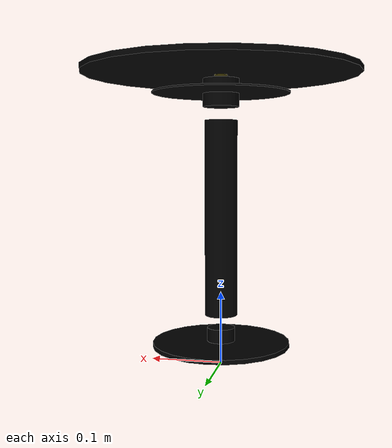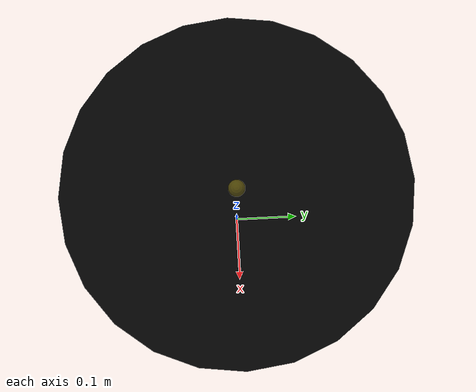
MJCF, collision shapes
<mujoco model="table_round">
  <custom>
    <numeric data="-0.332024 -0.069709 0.02821 0.999971 -0.0 -0.0 0.007559" name="0_part0_initpos" />
    <numeric data="-0.112954 -0.076936 0.026272 0.0 1.0 -9.4e-05 0.0" name="3_part3_initpos" />
    <numeric data="-0.316383 0.24 0.003274 0.0 0.082519 0.99659 0.0" name="2_part2_initpos" />
    <numeric data="0.01172 0.107275 0.022457 0.583591 -0.47236 0.52619 -0.399276" name="1_part1_initpos" />
  </custom>
  <asset>
    <mesh file="table_round/0.stl" name="part0" scale="0.0005 0.0005 0.0005" />
    <mesh file="table_round/3.stl" name="part3" scale="0.0005 0.0005 0.0005" />
    <mesh file="table_round/2.stl" name="part2" scale="0.0005 0.0005 0.0005" />
    <mesh file="table_round/1.stl" name="part1" scale="0.0005 0.0005 0.0005" />
  </asset>
  <worldbody><body name="combined_body" pos="0 0 0.02875" quat="1 0 0 0"><geom conaffinity="0" contype="0" density="0" mesh="part0" name="0_part0_mesh" pos="-6.5e-10 2.5e-10 -2e-10" rgba="0.82 0.71 0.55 1" type="mesh" quat="1 0 0 0" />
      <geom density="50" name="noviz_collision_0_part0_0" pos="-6.5e-10 2.5e-10 -2e-10" quat="1 0 0 0" rgba="0 0 0 0" size="0.09525 0.003" solref="0.001 1" type="cylinder" />
      <geom density="50" name="noviz_collision_0_part0_1" pos="-6.5e-10 2.5e-10 -2e-10" quat="1 0 0 0" rgba="0 0 0 0" size="0.01925 0.022" solref="0.001 1" type="cylinder" />
      <geom density="50" name="noviz_collision_0_part0_2" pos="-6.5e-10 2.5e-10 -2e-10" quat="1 0 0 0" rgba="0 0 0 0" size="0.013 0.0075" solref="0.001 1" type="cylinder" />
    <site name="0_part0_horizontal_radius_site" pos="-6.5e-10 2.5e-10 -2e-10" quat="1 0 0 0" rgba="0 0 0 0" size="0.01" />
      <site name="0_part0_top_site" pos="-6.5e-10 2.5e-10 -2e-10" quat="1 0 0 0" rgba="0 0 0 0" size="0.01" />
      <site name="0_part0_bottom_site" pos="-6.5e-10 2.5e-10 -2e-10" quat="1 0 0 0" rgba="0 0 0 0" size="0.01" />
      <site name="0_part0_corner_site8" pos="-6.5e-10 2.5e-10 -2e-10" quat="1 0 0 0" rgba="0 0 0 0" size="0.01" />
      <site name="0_part0_corner_site7" pos="-6.5e-10 2.5e-10 -2e-10" quat="1 0 0 0" rgba="0 0 0 0" size="0.01" />
      <site name="0_part0_corner_site6" pos="-6.5e-10 2.5e-10 -2e-10" quat="1 0 0 0" rgba="0 0 0 0" size="0.01" />
      <site name="0_part0_corner_site5" pos="-6.5e-10 2.5e-10 -2e-10" quat="1 0 0 0" rgba="0 0 0 0" size="0.01" />
      <site name="0_part0_corner_site4" pos="-6.5e-10 2.5e-10 -2e-10" quat="1 0 0 0" rgba="0 0 0 0" size="0.01" />
      <site name="0_part0_corner_site3" pos="-6.5e-10 2.5e-10 -2e-10" quat="1 0 0 0" rgba="0 0 0 0" size="0.01" />
      <site name="0_part0_corner_site2" pos="-6.5e-10 2.5e-10 -2e-10" quat="1 0 0 0" rgba="0 0 0 0" size="0.01" />
      <site name="0_part0_corner_site1" pos="-6.5e-10 2.5e-10 -2e-10" quat="1 0 0 0" rgba="0 0 0 0" size="0.01" />
      <site name="base-column,conn_site1" pos="-6.5e-10 2.5e-10 -2e-10" quat="1 0 0 0" rgba="0.9019 0.0980 0.2941 0.3" size="0.01" />
      <geom conaffinity="0" contype="0" density="0" mesh="part3" name="3_part3_mesh" pos="0 0 0.3468" rgba="0.82 0.71 0.55 1" type="mesh" quat="1 0 0 0" />
      <geom density="50" name="noviz_collision_3_part3_0" pos="0 0 0.3468" quat="1 0 0 0" rgba="0 0 0 0" size="0.095 0.001" solref="0.001 1" type="cylinder" />
      <geom density="50" name="noviz_collision_3_part3_1" pos="0 0 0.3468" quat="1 0 0 0" rgba="0 0 0 0" size="0.025 0.019" solref="0.001 1" type="cylinder" />
      <geom density="50" name="noviz_collision_3_part3_2" pos="0 0 0.3468" quat="1 0 0 0" rgba="0 0 0 0" size="0.013 0.0075" solref="0.001 1" type="cylinder" />
    <site group="1" name="3_part3_ltgt_site0" pos="0 0 0.3468" rgba="0 0 0 0" size="0.01 0.01 0.01" type="sphere" quat="1 0 0 0" />
      <site group="1" name="3_part3_rtgt_site0" pos="0 0 0.3468" rgba="0 0 0 0" size="0.01 0.01 0.01" type="sphere" quat="1 0 0 0" />
      <site name="3_part3_horizontal_radius_site" pos="0 0 0.3468" quat="1 0 0 0" rgba="0 0 0 0" size="0.01" />
      <site name="3_part3_top_site" pos="0 0 0.3468" quat="1 0 0 0" rgba="0 0 0 0" size="0.01" />
      <site name="3_part3_bottom_site" pos="0 0 0.3468" quat="1 0 0 0" rgba="0 0 0 0" size="0.01" />
      <site name="3_part3_corner_site8" pos="0 0 0.3468" quat="1 0 0 0" rgba="0 0 0 0" size="0.01" />
      <site name="3_part3_corner_site7" pos="0 0 0.3468" quat="1 0 0 0" rgba="0 0 0 0" size="0.01" />
      <site name="3_part3_corner_site6" pos="0 0 0.3468" quat="1 0 0 0" rgba="0 0 0 0" size="0.01" />
      <site name="3_part3_corner_site5" pos="0 0 0.3468" quat="1 0 0 0" rgba="0 0 0 0" size="0.01" />
      <site name="3_part3_corner_site4" pos="0 0 0.3468" quat="1 0 0 0" rgba="0 0 0 0" size="0.01" />
      <site name="3_part3_corner_site3" pos="0 0 0.3468" quat="1 0 0 0" rgba="0 0 0 0" size="0.01" />
      <site name="3_part3_corner_site2" pos="0 0 0.3468" quat="1 0 0 0" rgba="0 0 0 0" size="0.01" />
      <site name="3_part3_corner_site1" pos="0 0 0.3468" quat="1 0 0 0" rgba="0 0 0 0" size="0.01" />
      <site name="topsupp-column,conn_site2" pos="0 0 0.3468" quat="1 0 0 0" rgba="0.2352 0.7058 0.2941 0.3" size="0.01" />
      <site name="topsupp-topplane,conn_site1" pos="0 0 0.3468" quat="1 0 0 0" rgba="1.0 0.8823 0.0980 0.3" size="0.01" />
      <geom conaffinity="0" contype="0" density="0" mesh="part2" name="2_part2_mesh" pos="0 0 0.3746500065" rgba="0.82 0.71 0.55 1" type="mesh" quat="1 0 0 0" />
      <geom density="50" name="noviz_collision_2_part2_0" pos="0 0 0.3746500065" quat="1 0 0 0" rgba="0 0 0 0" size="0.1905 0.0035" solref="0.001 1" type="cylinder" />
    <site name="2_part2_horizontal_radius_site" pos="0 0 0.3746500065" quat="1 0 0 0" rgba="0 0 0 0" size="0.01" />
      <site name="2_part2_top_site" pos="0 0 0.3746500065" quat="1 0 0 0" rgba="0 0 0 0" size="0.01" />
      <site name="2_part2_bottom_site" pos="0 0 0.3746500065" quat="1 0 0 0" rgba="0 0 0 0" size="0.01" />
      <site name="2_part2_corner_site8" pos="0 0 0.3746500065" quat="1 0 0 0" rgba="0 0 0 0" size="0.01" />
      <site name="2_part2_corner_site7" pos="0 0 0.3746500065" quat="1 0 0 0" rgba="0 0 0 0" size="0.01" />
      <site name="2_part2_corner_site6" pos="0 0 0.3746500065" quat="1 0 0 0" rgba="0 0 0 0" size="0.01" />
      <site name="2_part2_corner_site5" pos="0 0 0.3746500065" quat="1 0 0 0" rgba="0 0 0 0" size="0.01" />
      <site name="2_part2_corner_site4" pos="0 0 0.3746500065" quat="1 0 0 0" rgba="0 0 0 0" size="0.01" />
      <site name="2_part2_corner_site3" pos="0 0 0.3746500065" quat="1 0 0 0" rgba="0 0 0 0" size="0.01" />
      <site name="2_part2_corner_site2" pos="0 0 0.3746500065" quat="1 0 0 0" rgba="0 0 0 0" size="0.01" />
      <site name="2_part2_corner_site1" pos="0 0 0.3746500065" quat="1 0 0 0" rgba="0 0 0 0" size="0.01" />
      <site name="topplane-topsupp,conn_site1" pos="0 0 0.3746500065" quat="1 0 0 0" rgba="1.0 0.8823 0.0980 0.3" size="0.01" />
      <geom conaffinity="0" contype="0" density="0" mesh="part1" name="1_part1_mesh" pos="0 0 0.17462500035" rgba="0.82 0.71 0.55 1" type="mesh" quat="1 0 0 0" />
      <geom density="50" name="noviz_collision_1_part1_0" pos="0 0 0.17462500035" quat="1 0 0 0" rgba="0 0 0 0" size="0.0225 0.135" solref="0.001 1" type="cylinder" />

      <geom density="50" name="noviz_collision_1_part1_1" pos="0 0 0.17462500035" quat="1 0 0 0" rgba="1 0 0 1" size="0.007 0.001 0.015" solref="0.001 1" type="box" />
      <geom density="50" name="noviz_collision_1_part1_2" pos="0 0 0.17462500035" quat="1 0 0 0" rgba="1 0 0 1" size="0.007 0.001 0.015" solref="0.001 1" type="box" />
      <geom density="50" name="noviz_collision_1_part1_3" pos="0 0 0.17462500035" quat="1 0 0 0" rgba="1 0 0 1" size="0.007 0.001 0.015" solref="0.001 1" type="box" />
      <geom density="50" name="noviz_collision_1_part1_4" pos="0 0 0.17462500035" quat="1 0 0 0" rgba="1 0 0 1" size="0.007 0.001 0.015" solref="0.001 1" type="box" />
      <geom density="50" name="noviz_collision_1_part1_5" pos="0 0 0.17462500035" quat="1 0 0 0" rgba="1 0 0 1" size="0.007 0.001 0.015" solref="0.001 1" type="box" />
      <geom density="50" name="noviz_collision_1_part1_6" pos="0 0 0.17462500035" quat="1 0 0 0" rgba="1 0 0 1" size="0.007 0.001 0.015" solref="0.001 1" type="box" />
      <geom density="50" name="noviz_collision_1_part1_7" pos="0 0 0.17462500035" quat="1 0 0 0" rgba="1 0 0 1" size="0.007 0.001 0.015" solref="0.001 1" type="box" />
      <geom density="50" name="noviz_collision_1_part1_8" pos="0 0 0.17462500035" quat="1 0 0 0" rgba="1 0 0 1" size="0.007 0.001 0.015" solref="0.001 1" type="box" />

      <geom density="50" name="noviz_collision_1_part1_11" pos="0 0 0.17462500035" quat="1 0 0 0" rgba="1 0 0 1" size="0.007 0.003 0.015" solref="0.001 1" type="box" />
      <geom density="50" name="noviz_collision_1_part1_12" pos="0 0 0.17462500035" quat="1 0 0 0" rgba="1 0 0 1" size="0.007 0.003 0.015" solref="0.001 1" type="box" />
      <geom density="50" name="noviz_collision_1_part1_13" pos="0 0 0.17462500035" quat="1 0 0 0" rgba="1 0 0 1" size="0.007 0.003 0.015" solref="0.001 1" type="box" />
      <geom density="50" name="noviz_collision_1_part1_14" pos="0 0 0.17462500035" quat="1 0 0 0" rgba="1 0 0 1" size="0.007 0.003 0.015" solref="0.001 1" type="box" />
      <geom density="50" name="noviz_collision_1_part1_15" pos="0 0 0.17462500035" quat="1 0 0 0" rgba="1 0 0 1" size="0.007 0.003 0.015" solref="0.001 1" type="box" />
      <geom density="50" name="noviz_collision_1_part1_16" pos="0 0 0.17462500035" quat="1 0 0 0" rgba="1 0 0 1" size="0.007 0.003 0.015" solref="0.001 1" type="box" />
      <geom density="50" name="noviz_collision_1_part1_17" pos="0 0 0.17462500035" quat="1 0 0 0" rgba="1 0 0 1" size="0.007 0.003 0.015" solref="0.001 1" type="box" />
      <geom density="50" name="noviz_collision_1_part1_18" pos="0 0 0.17462500035" quat="1 0 0 0" rgba="1 0 0 1" size="0.007 0.003 0.015" solref="0.001 1" type="box" />
    <site group="1" name="1_part1_ltgt_site0" pos="0 0 0.17462500035" rgba="0 0 0 0" size="0.01 0.01 0.01" type="sphere" quat="1 0 0 0" />
      <site group="1" name="1_part1_rtgt_site0" pos="0 0 0.17462500035" rgba="0 0 0 0" size="0.01 0.01 0.01" type="sphere" quat="1 0 0 0" />
      <site group="1" name="1_part1_ltgt_site1" pos="0 0 0.17462500035" rgba="0 0 0 0" size="0.01 0.01 0.01" type="sphere" quat="1 0 0 0" />
      <site group="1" name="1_part1_rtgt_site1" pos="0 0 0.17462500035" rgba="0 0 0 0" size="0.01 0.01 0.01" type="sphere" quat="1 0 0 0" />
      <site name="1_part1_horizontal_radius_site" pos="0 0 0.17462500035" quat="1 0 0 0" rgba="0 0 0 0" size="0.01" />
      <site name="1_part1_top_site" pos="0 0 0.17462500035" quat="1 0 0 0" rgba="0 0 0 0" size="0.01" />
      <site name="1_part1_bottom_site" pos="0 0 0.17462500035" quat="1 0 0 0" rgba="0 0 0 0" size="0.01" />
      <site name="1_part1_corner_site8" pos="0 0 0.17462500035" quat="1 0 0 0" rgba="0 0 0 0" size="0.01" />
      <site name="1_part1_corner_site7" pos="0 0 0.17462500035" quat="1 0 0 0" rgba="0 0 0 0" size="0.01" />
      <site name="1_part1_corner_site6" pos="0 0 0.17462500035" quat="1 0 0 0" rgba="0 0 0 0" size="0.01" />
      <site name="1_part1_corner_site5" pos="0 0 0.17462500035" quat="1 0 0 0" rgba="0 0 0 0" size="0.01" />
      <site name="1_part1_corner_site4" pos="0 0 0.17462500035" quat="1 0 0 0" rgba="0 0 0 0" size="0.01" />
      <site name="1_part1_corner_site3" pos="0 0 0.17462500035" quat="1 0 0 0" rgba="0 0 0 0" size="0.01" />
      <site name="1_part1_corner_site2" pos="0 0 0.17462500035" quat="1 0 0 0" rgba="0 0 0 0" size="0.01" />
      <site name="1_part1_corner_site1" pos="0 0 0.17462500035" quat="1 0 0 0" rgba="0 0 0 0" size="0.01" />
      <site name="column-base,conn_site1" pos="0 0 0.17462500035" quat="1 0 0 0" rgba="0.9019 0.0980 0.2941 0.3" size="0.01" />
      <site name="column-topsupp,conn_site2" pos="0 0 0.17462500035" quat="1 0 0 0" rgba="0.2352 0.7058 0.2941 0.3" size="0.01" />
      </body></worldbody><actuator /><sensor /><contact /><default /></mujoco>
